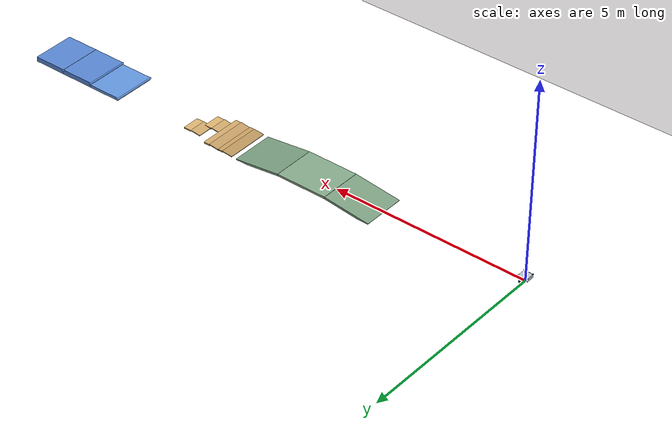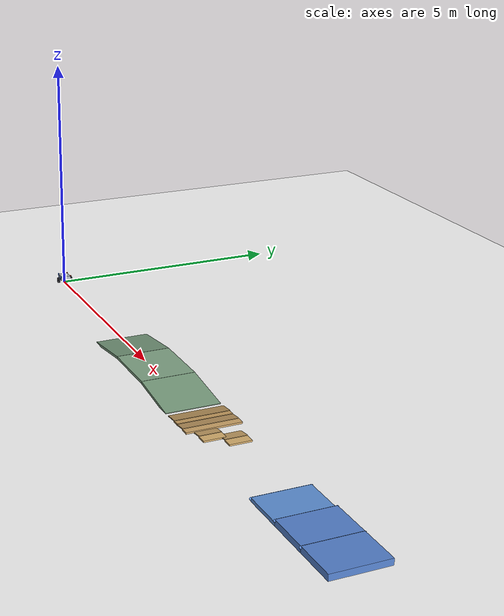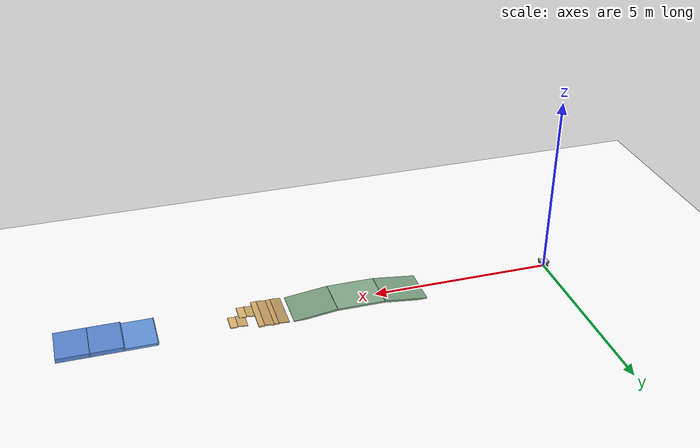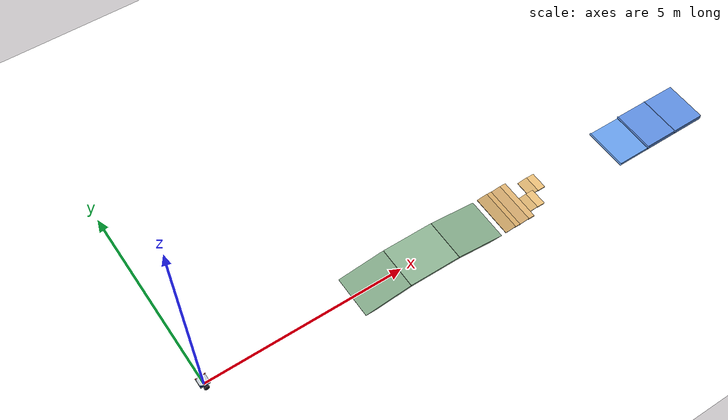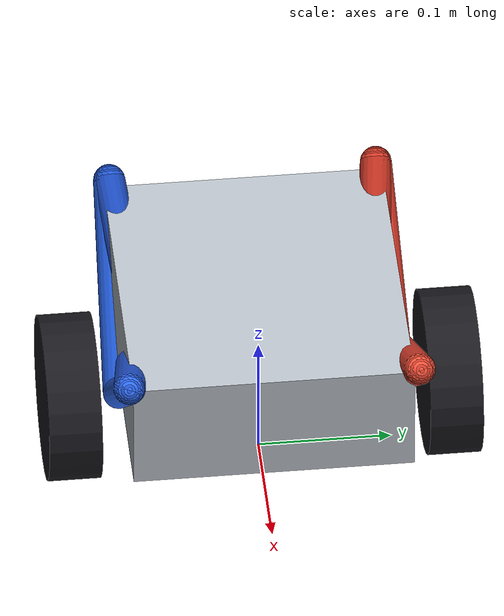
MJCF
<mujoco model="wheel leg from requested STEP">
  <compiler angle="radian" meshdir="step_meshes" autolimits="true"/>
  <option timestep="0.001" gravity="0 0 -9.81" solver="Newton" iterations="100"/>

  <default>
    <joint axis="0 1 0" damping=".05"/>
    <geom contype="0" conaffinity="0"/>
    <default class="leg_joint">
      <joint margin=".08" solreflimit=".002 1" solimplimit=".99 .999 .001"/>
    </default>
    <default class="visual">
      <geom type="mesh" density="0" group="3"/>
    </default>
    <default class="fast_visual">
      <geom type="capsule" size=".012" density="0" contype="0" conaffinity="0" group="2"/>
    </default>
    <default class="collision">
      <geom contype="1" conaffinity="1" friction=".7 0.01 0.001" condim="4" rgba="0 0 0 0"/>
    </default>
  </default>

  <asset>
    <texture name="ground" type="2d" builtin="checker" rgb1=".18 .22 .24" rgb2=".28 .32 .34" width="512" height="512"/>
    <material name="ground" texture="ground" texrepeat="5 5" reflectance=".15"/>
    <material name="terrain_ramp" rgba=".48 .62 .50 1" reflectance=".10"/>
    <material name="terrain_step" rgba=".78 .62 .38 1" reflectance=".08"/>
    <material name="terrain_jump" rgba=".38 .58 .86 1" reflectance=".10"/>
    <mesh name="chassis_1" file="chassis_1.stl"/>
    <mesh name="chassis_2" file="chassis_2.stl"/>
    <mesh name="chassis_3" file="chassis_3.stl"/>
    <mesh name="left_liangan1" file="left_liangan1.stl"/>
    <mesh name="left_liangan2" file="left_liangan2.stl"/>
    <mesh name="left_liangan3" file="left_liangan3.stl"/>
    <mesh name="left_liangan4" file="left_liangan4.stl"/>
    <mesh name="left_wheel" file="left_wheel.stl"/>
    <mesh name="right_liangan1" file="right_liangan1.stl"/>
    <mesh name="right_liangan2" file="right_liangan2.stl"/>
    <mesh name="right_liangan3" file="right_liangan3.stl"/>
    <mesh name="right_liangan4" file="right_liangan4.stl"/>
    <mesh name="right_wheel" file="right_wheel.stl"/>
  </asset>

  <worldbody>
    <light pos="0 -2 3" dir="0 1 -1"/>
    <geom name="floor" type="plane" size="20 20 .1" material="ground" class="collision" rgba="1 1 1 1"/>
    <!-- Course starts after the default validation distance, so ordinary flat-ground tests stay unchanged. -->
    <geom name="terrain_up_slope" type="box" pos="4.30 0 .047" size=".60 .55 .025" euler="0 -.12 0" material="terrain_ramp" class="collision" density="0" rgba=".48 .62 .50 1"/>
    <geom name="terrain_top_platform" type="box" pos="5.55 0 .119" size=".65 .55 .025" material="terrain_ramp" class="collision" density="0" rgba=".52 .66 .54 1"/>
    <geom name="terrain_down_slope" type="box" pos="6.80 0 .047" size=".60 .55 .025" euler="0 .12 0" material="terrain_ramp" class="collision" density="0" rgba=".48 .62 .50 1"/>
    <geom name="terrain_low_step_lead_in" type="box" pos="7.66 0 .013" size=".14 .55 .008" euler="0 -.09 0" material="terrain_step" class="collision" density="0" rgba=".72 .58 .36 1"/>
    <geom name="terrain_low_step" type="box" pos="7.85 0 .0125" size=".075 .55 .0125" material="terrain_step" class="collision" density="0" rgba=".78 .62 .38 1"/>
    <geom name="terrain_mid_step_lead_in" type="box" pos="8.04 0 .019" size=".14 .55 .010" euler="0 -.13 0" material="terrain_step" class="collision" density="0" rgba=".76 .61 .39 1"/>
    <geom name="terrain_mid_step" type="box" pos="8.25 0 .018" size=".085 .55 .018" material="terrain_step" class="collision" density="0" rgba=".82 .66 .42 1"/>
    <geom name="terrain_left_offset_step_lead_in" type="box" pos="8.42 -.18 .017" size=".13 .22 .009" euler="0 -.12 0" material="terrain_step" class="collision" density="0" rgba=".80 .65 .41 1"/>
    <geom name="terrain_left_offset_step" type="box" pos="8.65 -.18 .016" size=".10 .22 .016" material="terrain_step" class="collision" density="0" rgba=".86 .70 .44 1"/>
    <geom name="terrain_right_offset_step_lead_in" type="box" pos="8.72 .18 .017" size=".13 .22 .009" euler="0 -.12 0" material="terrain_step" class="collision" density="0" rgba=".80 .65 .41 1"/>
    <geom name="terrain_right_offset_step" type="box" pos="8.95 .18 .016" size=".10 .22 .016" material="terrain_step" class="collision" density="0" rgba=".86 .70 .44 1"/>
    <geom name="terrain_jump_level1" type="box" pos="11.35 0 .035" size=".42 .55 .035" material="terrain_jump" class="collision" density="0" friction="1.35 0.02 0.002" rgba=".38 .58 .86 1"/>
    <geom name="terrain_jump_lip_level1_front" type="capsule" pos="10.93 0 .045" size=".025 .55" quat=".707107 .707107 0 0" material="terrain_jump" class="collision" density="0" friction="1.35 0.02 0.002" rgba=".38 .58 .86 1"/>
    <geom name="terrain_jump_level2" type="box" pos="12.20 0 .060" size=".42 .55 .060" material="terrain_jump" class="collision" density="0" friction="1.35 0.02 0.002" rgba=".34 .52 .82 1"/>
    <geom name="terrain_jump_lip_level2_front" type="capsule" pos="11.78 0 .095" size=".025 .55" quat=".707107 .707107 0 0" material="terrain_jump" class="collision" density="0" friction="1.35 0.02 0.002" rgba=".34 .52 .82 1"/>
    <geom name="terrain_jump_landing" type="box" pos="13.05 0 .060" size=".42 .55 .060" material="terrain_jump" class="collision" density="0" friction="1.35 0.02 0.002" rgba=".34 .52 .82 1"/>
    <geom name="terrain_jump_lip_landing_front" type="capsule" pos="12.63 0 .095" size=".025 .55" quat=".707107 .707107 0 0" material="terrain_jump" class="collision" density="0" friction="1.35 0.02 0.002" rgba=".34 .52 .82 1"/>
    <body name="robot" pos="0 0 .0765">
      <joint name="root_x" type="slide" axis="1 0 0" damping=".1"/>
      <joint name="root_y" type="slide" axis="0 1 0" damping=".1"/>
      <joint name="root_z" type="slide" axis="0 0 1" damping=".1"/>
      <joint name="root_yaw" type="hinge" axis="0 0 1" damping=".1"/>
      <joint name="root_roll" type="hinge" axis="1 0 0" damping=".1"/>
      <joint name="root_pitch" type="hinge" axis="0 1 0" damping=".1"/>
      <inertial pos="0 0 .05" mass="5.0" diaginertia=".035 .025 .025"/>
      <geom class="visual" mesh="chassis_1" rgba=".72 .75 .78 1"/>
      <geom class="visual" mesh="chassis_2" rgba=".72 .75 .78 1"/>
      <geom class="visual" mesh="chassis_3" rgba=".72 .75 .78 1"/>
      <geom type="box" pos="0 0 .045" size=".115 .105 .045" density="0" contype="0" conaffinity="0" group="2" rgba=".72 .75 .78 1"/>
      <geom name="chassis_collision" type="box" pos="0 0 .045" size=".118 .108 .047" density="0" class="collision"/>

      <body name="left_rear_drive" pos=".044 -.0995 .053">
        <joint name="left_rear_hip" range=".036578 2.063914" class="leg_joint"/>
        <inertial pos=".035 0 .022" mass=".12" diaginertia=".00025 .00025 .00002"/>
        <geom class="visual" mesh="left_liangan4" pos="-.044 .0995 -.053" rgba=".15 .35 .85 1"/>
        <geom class="fast_visual" fromto="0 0 0 .072743 -.0085 .042005" rgba=".15 .35 .85 1"/>
        <body name="left_rear_rod" pos=".072743 -.0085 .042005">
          <joint name="left_rear_knee" range="-2.063041 -.319139" class="leg_joint"/>
          <inertial pos="-.055 0 -.055" mass=".18" diaginertia=".0005 .0005 .00003"/>
          <geom class="visual" mesh="left_liangan2" pos="-.116743 .108 -.095005" rgba=".18 .42 .95 1"/>
          <geom class="fast_visual" fromto="0 0 0 -.116743 .003 -.109412" rgba=".18 .42 .95 1"/>
          <body name="left_wheel_body" pos="-.116743 .003 -.109412">
            <joint name="left_wheel_joint" damping=".01"/>
            <inertial pos="0 -.038 0" mass=".9" diaginertia=".0012 .0007 .0012"/>
            <site name="left_wheel_center" size=".004"/>
            <geom class="visual" mesh="left_wheel" pos="0 .105 .014407" rgba=".10 .10 .12 1"/>
            <geom type="cylinder" pos="0 -.038 0" size=".0625 .020" quat=".707107 .707107 0 0" density="0" contype="0" conaffinity="0" group="2" rgba=".10 .10 .12 1"/>
            <geom name="left_wheel_collision" type="cylinder" pos="0 -.038 0" size=".0625 .020" quat=".707107 .707107 0 0" class="collision"/>
          </body>
        </body>
      </body>
      <body name="left_front_drive" pos="-.044 -.092 .053">
        <joint name="left_front_hip" range="4.219272 6.246607" class="leg_joint"/>
        <inertial pos=".035 0 .022" mass=".12" diaginertia=".00025 .00025 .00002"/>
        <geom class="visual" mesh="left_liangan3" pos=".044 .092 -.053" rgba=".10 .28 .72 1"/>
        <geom class="fast_visual" fromto="0 0 0 -.072743 -.0085 .042005" rgba=".10 .28 .72 1"/>
        <body name="left_front_rod" pos="-.072743 -.0085 .042005">
          <joint name="left_front_knee" range="-5.964046 -4.220144" class="leg_joint"/>
          <inertial pos="-.055 0 -.055" mass=".18" diaginertia=".0005 .0005 .00003"/>
          <geom class="visual" mesh="left_liangan1" pos=".116743 .1005 -.095005" rgba=".12 .34 .82 1"/>
          <geom class="fast_visual" fromto="0 0 0 .116743 -.0045 -.109412" rgba=".12 .34 .82 1"/>
          <site name="left_loop_end" pos=".116743 -.0045 -.109412" size=".004"/>
        </body>
      </body>

      <body name="right_rear_drive" pos=".044 .0995 .053">
        <joint name="right_rear_hip" range=".036578 2.063914" class="leg_joint"/>
        <inertial pos=".035 0 .022" mass=".12" diaginertia=".00025 .00025 .00002"/>
        <geom class="visual" mesh="right_liangan3" pos="-.044 -.0995 -.053" rgba=".85 .25 .18 1"/>
        <geom class="fast_visual" fromto="0 0 0 .072743 .0085 .042005" rgba=".85 .25 .18 1"/>
        <body name="right_rear_rod" pos=".072743 .0085 .042005">
          <joint name="right_rear_knee" range="-2.063041 -.319139" class="leg_joint"/>
          <inertial pos="-.055 0 -.055" mass=".18" diaginertia=".0005 .0005 .00003"/>
          <geom class="visual" mesh="right_liangan1" pos="-.116743 -.108 -.095005" rgba=".95 .32 .22 1"/>
          <geom class="fast_visual" fromto="0 0 0 -.116743 -.003 -.109412" rgba=".95 .32 .22 1"/>
          <body name="right_wheel_body" pos="-.116743 -.003 -.109412">
            <joint name="right_wheel_joint" damping=".01"/>
            <inertial pos="0 .038 0" mass=".9" diaginertia=".0012 .0007 .0012"/>
            <site name="right_wheel_center" size=".004"/>
            <geom class="visual" mesh="right_wheel" pos="0 -.105 .014407" rgba=".10 .10 .12 1"/>
            <geom type="cylinder" pos="0 .038 0" size=".0625 .020" quat=".707107 .707107 0 0" density="0" contype="0" conaffinity="0" group="2" rgba=".10 .10 .12 1"/>
            <geom name="right_wheel_collision" type="cylinder" pos="0 .038 0" size=".0625 .020" quat=".707107 .707107 0 0" class="collision"/>
          </body>
        </body>
      </body>
      <body name="right_front_drive" pos="-.044 .092 .053">
        <joint name="right_front_hip" range="4.219272 6.246607" class="leg_joint"/>
        <inertial pos=".035 0 .022" mass=".12" diaginertia=".00025 .00025 .00002"/>
        <geom class="visual" mesh="right_liangan4" pos=".044 -.092 -.053" rgba=".72 .18 .12 1"/>
        <geom class="fast_visual" fromto="0 0 0 -.072743 .0085 .042005" rgba=".72 .18 .12 1"/>
        <body name="right_front_rod" pos="-.072743 .0085 .042005">
          <joint name="right_front_knee" range="-5.964046 -4.220144" class="leg_joint"/>
          <inertial pos="-.055 0 -.055" mass=".18" diaginertia=".0005 .0005 .00003"/>
          <geom class="visual" mesh="right_liangan2" pos=".116743 -.1005 -.095005" rgba=".82 .22 .15 1"/>
          <geom class="fast_visual" fromto="0 0 0 .116743 .0045 -.109412" rgba=".82 .22 .15 1"/>
          <site name="right_loop_end" pos=".116743 .0045 -.109412" size=".004"/>
        </body>
      </body>
    </body>
  </worldbody>

  <equality>
    <connect name="left_loop" site1="left_wheel_center" site2="left_loop_end" solref=".003 1"/>
    <connect name="right_loop" site1="right_wheel_center" site2="right_loop_end" solref=".003 1"/>
  </equality>

  <actuator>
    <motor name="Left_front_joint_actuator" joint="left_front_hip" forcerange="-8 8"/>
    <motor name="Left_rear_joint_actuator" joint="left_rear_hip" forcerange="-8 8"/>
    <motor name="Left_Wheel_joint_actuator" joint="left_wheel_joint" forcerange="-4 4"/>
    <motor name="Right_front_joint_actuator" joint="right_front_hip" forcerange="-8 8"/>
    <motor name="Right_rear_joint_actuator" joint="right_rear_hip" forcerange="-8 8"/>
    <motor name="Right_Wheel_joint_actuator" joint="right_wheel_joint" forcerange="-4 4"/>
    <!-- Compensates MuJoCo's isotropic cylinder contact, which over-resists differential-drive yaw. -->
    <motor name="Yaw_assist_actuator" joint="root_yaw" forcerange="-6 6"/>
  </actuator>

  <keyframe>
    <key name="home" qpos="0 0 0 0 0 0 0 0 0 0 0 0 0 0 0 0"/>
  </keyframe>
</mujoco>
